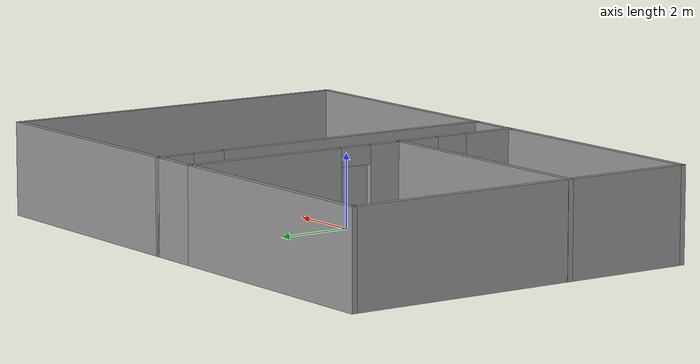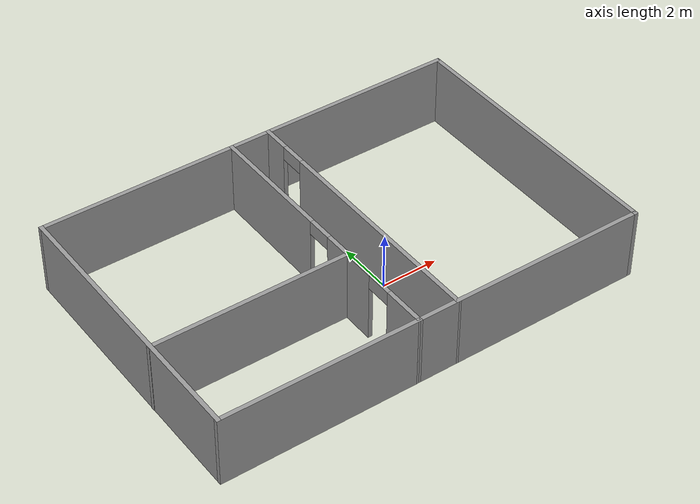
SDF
<?xml version='1.0'?>
<sdf version='1.6'>
  <model name='large_rooms'>
    <pose frame=''>-1.00982 0.957129 0 0 -0 0</pose>
    <link name='Wall_15'>
      <pose frame=''>-0.693998 -0.00105 0 0 0 -1.57083</pose>
      <visual name='Wall_15_Visual_0'>
        <pose frame=''>-2.72597 0 1.25 0 -0 0</pose>
        <geometry>
          <box>
            <size>4.54806 0.15 2.5</size>
          </box>
        </geometry>
        <material>
          <script>
            <uri>file://media/materials/scripts/gazebo.material</uri>
            <name>Gazebo/Grey</name>
          </script>
          <ambient>1 1 1 1</ambient>
        </material>
      </visual>
      <collision name='Wall_15_Collision_0'>
        <geometry>
          <box>
            <size>4.54806 0.15 2.5</size>
          </box>
        </geometry>
        <pose frame=''>-2.72597 0 1.25 0 -0 0</pose>
      </collision>
      <visual name='Wall_15_Visual_1'>
        <pose frame=''>1.51228 0 1.25 0 -0 0</pose>
        <geometry>
          <box>
            <size>2.12844 0.15 2.5</size>
          </box>
        </geometry>
        <material>
          <script>
            <uri>file://media/materials/scripts/gazebo.material</uri>
            <name>Gazebo/Grey</name>
          </script>
          <ambient>1 1 1 1</ambient>
        </material>
      </visual>
      <collision name='Wall_15_Collision_1'>
        <geometry>
          <box>
            <size>2.12844 0.15 2.5</size>
          </box>
        </geometry>
        <pose frame=''>1.51228 0 1.25 0 -0 0</pose>
      </collision>
      <visual name='Wall_15_Visual_2'>
        <pose frame=''>4.23825 0 1.25 0 -0 0</pose>
        <geometry>
          <box>
            <size>1.5235 0.15 2.5</size>
          </box>
        </geometry>
        <material>
          <script>
            <uri>file://media/materials/scripts/gazebo.material</uri>
            <name>Gazebo/Grey</name>
          </script>
          <ambient>1 1 1 1</ambient>
        </material>
      </visual>
      <collision name='Wall_15_Collision_2'>
        <geometry>
          <box>
            <size>1.5235 0.15 2.5</size>
          </box>
        </geometry>
        <pose frame=''>4.23825 0 1.25 0 -0 0</pose>
      </collision>
      <visual name='Wall_15_Visual_3'>
        <pose frame=''>-0.001938 0 2.25 0 -0 0</pose>
        <geometry>
          <box>
            <size>0.9 0.15 0.5</size>
          </box>
        </geometry>
        <material>
          <script>
            <uri>file://media/materials/scripts/gazebo.material</uri>
            <name>Gazebo/Grey</name>
          </script>
          <ambient>1 1 1 1</ambient>
        </material>
      </visual>
      <collision name='Wall_15_Collision_3'>
        <geometry>
          <box>
            <size>0.9 0.15 0.5</size>
          </box>
        </geometry>
        <pose frame=''>-0.001938 0 2.25 0 -0 0</pose>
      </collision>
      <visual name='Wall_15_Visual_4'>
        <pose frame=''>3.0265 0 2.25 0 -0 0</pose>
        <geometry>
          <box>
            <size>0.9 0.15 0.5</size>
          </box>
        </geometry>
        <material>
          <script>
            <uri>file://media/materials/scripts/gazebo.material</uri>
            <name>Gazebo/Grey</name>
          </script>
          <ambient>1 1 1 1</ambient>
        </material>
      </visual>
      <collision name='Wall_15_Collision_4'>
        <geometry>
          <box>
            <size>0.9 0.15 0.5</size>
          </box>
        </geometry>
        <pose frame=''>3.0265 0 2.25 0 -0 0</pose>
      </collision>
    </link>
    <link name='Wall_17'>
      <pose frame=''>0.703787 0.001137 0 0 -0 1.5708</pose>
      <visual name='Wall_17_Visual_0'>
        <pose frame=''>-0.967925 0 1.25 0 -0 0</pose>
        <geometry>
          <box>
            <size>8.06415 0.15 2.5</size>
          </box>
        </geometry>
        <material>
          <script>
            <uri>file://media/materials/scripts/gazebo.material</uri>
            <name>Gazebo/Grey</name>
          </script>
          <ambient>1 1 1 1</ambient>
        </material>
      </visual>
      <collision name='Wall_17_Collision_0'>
        <geometry>
          <box>
            <size>8.06415 0.15 2.5</size>
          </box>
        </geometry>
        <pose frame=''>-0.967925 0 1.25 0 -0 0</pose>
      </collision>
      <visual name='Wall_17_Visual_1'>
        <pose frame=''>4.48208 0 1.25 0 -0 0</pose>
        <geometry>
          <box>
            <size>1.03585 0.15 2.5</size>
          </box>
        </geometry>
        <material>
          <script>
            <uri>file://media/materials/scripts/gazebo.material</uri>
            <name>Gazebo/Grey</name>
          </script>
          <ambient>1 1 1 1</ambient>
        </material>
      </visual>
      <collision name='Wall_17_Collision_1'>
        <geometry>
          <box>
            <size>1.03585 0.15 2.5</size>
          </box>
        </geometry>
        <pose frame=''>4.48208 0 1.25 0 -0 0</pose>
      </collision>
      <visual name='Wall_17_Visual_2'>
        <pose frame=''>3.51415 0 2.25 0 -0 0</pose>
        <geometry>
          <box>
            <size>0.9 0.15 0.5</size>
          </box>
        </geometry>
        <material>
          <script>
            <uri>file://media/materials/scripts/gazebo.material</uri>
            <name>Gazebo/Grey</name>
          </script>
          <ambient>1 1 1 1</ambient>
        </material>
      </visual>
      <collision name='Wall_17_Collision_2'>
        <geometry>
          <box>
            <size>0.9 0.15 0.5</size>
          </box>
        </geometry>
        <pose frame=''>3.51415 0 2.25 0 -0 0</pose>
      </collision>
    </link>
    <link name='Wall_19'>
      <collision name='Wall_19_Collision'>
        <geometry>
          <box>
            <size>1.5476 0.15 2.5</size>
          </box>
        </geometry>
        <pose frame=''>0 0 1.25 0 -0 0</pose>
      </collision>
      <visual name='Wall_19_Visual'>
        <pose frame=''>0 0 1.25 0 -0 0</pose>
        <geometry>
          <box>
            <size>1.5476 0.15 2.5</size>
          </box>
        </geometry>
        <material>
          <script>
            <uri>file://media/materials/scripts/gazebo.material</uri>
            <name>Gazebo/Grey</name>
          </script>
          <ambient>1 1 1 1</ambient>
        </material>
      </visual>
      <pose frame=''>0.004804 -4.925 0 0 -0 0.001621</pose>
    </link>
    <link name='Wall_21'>
      <collision name='Wall_21_Collision'>
        <geometry>
          <box>
            <size>1.5476 0.15 2.5</size>
          </box>
        </geometry>
        <pose frame=''>0 0 1.25 0 -0 0</pose>
      </collision>
      <visual name='Wall_21_Visual'>
        <pose frame=''>0 0 1.25 0 -0 0</pose>
        <geometry>
          <box>
            <size>1.5476 0.15 2.5</size>
          </box>
        </geometry>
        <material>
          <script>
            <uri>file://media/materials/scripts/gazebo.material</uri>
            <name>Gazebo/Grey</name>
          </script>
          <ambient>1 1 1 1</ambient>
        </material>
      </visual>
      <pose frame=''>0.004985 4.92508 0 0 -0 0.001508</pose>
    </link>
    <link name='Wall_23'>
      <collision name='Wall_23_Collision'>
        <geometry>
          <box>
            <size>7 0.15 2.5</size>
          </box>
        </geometry>
        <pose frame=''>0 0 1.25 0 -0 0</pose>
      </collision>
      <visual name='Wall_23_Visual'>
        <pose frame=''>0 0 1.25 0 -0 0</pose>
        <geometry>
          <box>
            <size>7 0.15 2.5</size>
          </box>
        </geometry>
        <material>
          <script>
            <uri>file://media/materials/scripts/gazebo.material</uri>
            <name>Gazebo/Grey</name>
          </script>
          <ambient>1 1 1 1</ambient>
        </material>
      </visual>
      <pose frame=''>4.12879 4.92614 0 0 -0 0</pose>
    </link>
    <link name='Wall_26'>
      <collision name='Wall_26_Collision'>
        <geometry>
          <box>
            <size>7 0.15 2.5</size>
          </box>
        </geometry>
        <pose frame=''>0 0 1.25 0 -0 0</pose>
      </collision>
      <visual name='Wall_26_Visual'>
        <pose frame=''>0 0 1.25 0 -0 0</pose>
        <geometry>
          <box>
            <size>7 0.15 2.5</size>
          </box>
        </geometry>
        <material>
          <script>
            <uri>file://media/materials/scripts/gazebo.material</uri>
            <name>Gazebo/Grey</name>
          </script>
          <ambient>1 1 1 1</ambient>
        </material>
      </visual>
      <pose frame=''>4.12879 -4.92386 0 0 -0 0</pose>
    </link>
    <link name='Wall_28'>
      <collision name='Wall_28_Collision'>
        <geometry>
          <box>
            <size>10 0.15 2.5</size>
          </box>
        </geometry>
        <pose frame=''>0 0 1.25 0 -0 0</pose>
      </collision>
      <visual name='Wall_28_Visual'>
        <pose frame=''>0 0 1.25 0 -0 0</pose>
        <geometry>
          <box>
            <size>10 0.15 2.5</size>
          </box>
        </geometry>
        <material>
          <script>
            <uri>file://media/materials/scripts/gazebo.material</uri>
            <name>Gazebo/Grey</name>
          </script>
          <ambient>1 1 1 1</ambient>
        </material>
      </visual>
      <pose frame=''>7.55379 0.001137 0 0 0 -1.5708</pose>
    </link>
    <link name='Wall_30'>
      <collision name='Wall_30_Collision'>
        <geometry>
          <box>
            <size>7 0.15 2.5</size>
          </box>
        </geometry>
        <pose frame=''>0 0 1.25 0 -0 0</pose>
      </collision>
      <visual name='Wall_30_Visual'>
        <pose frame=''>0 0 1.25 0 -0 0</pose>
        <geometry>
          <box>
            <size>7 0.15 2.5</size>
          </box>
        </geometry>
        <material>
          <script>
            <uri>file://media/materials/scripts/gazebo.material</uri>
            <name>Gazebo/Grey</name>
          </script>
          <ambient>1 1 1 1</ambient>
        </material>
      </visual>
      <pose frame=''>-4.11918 -4.92613 0 0 -0 3.14159</pose>
    </link>
    <link name='Wall_32'>
      <collision name='Wall_32_Collision'>
        <geometry>
          <box>
            <size>7 0.15 2.5</size>
          </box>
        </geometry>
        <pose frame=''>0 0 1.25 0 -0 0</pose>
      </collision>
      <visual name='Wall_32_Visual'>
        <pose frame=''>0 0 1.25 0 -0 0</pose>
        <geometry>
          <box>
            <size>7 0.15 2.5</size>
          </box>
        </geometry>
        <material>
          <script>
            <uri>file://media/materials/scripts/gazebo.material</uri>
            <name>Gazebo/Grey</name>
          </script>
          <ambient>1 1 1 1</ambient>
        </material>
      </visual>
      <pose frame=''>-4.11882 4.92403 0 0 -0 3.14159</pose>
    </link>
    <link name='Wall_33'>
      <collision name='Wall_33_Collision'>
        <geometry>
          <box>
            <size>10 0.15 2.5</size>
          </box>
        </geometry>
        <pose frame=''>0 0 1.25 0 -0 0</pose>
      </collision>
      <visual name='Wall_33_Visual'>
        <pose frame=''>0 0 1.25 0 -0 0</pose>
        <geometry>
          <box>
            <size>10 0.15 2.5</size>
          </box>
        </geometry>
        <material>
          <script>
            <uri>file://media/materials/scripts/gazebo.material</uri>
            <name>Gazebo/Grey</name>
          </script>
          <ambient>1 1 1 1</ambient>
        </material>
      </visual>
      <pose frame=''>-7.54382 -0.00097 0 0 0 -1.5708</pose>
    </link>
    <link name='Wall_35'>
      <collision name='Wall_35_Collision'>
        <geometry>
          <box>
            <size>7 0.15 2.5</size>
          </box>
        </geometry>
        <pose frame=''>0 0 1.25 0 -0 0</pose>
      </collision>
      <visual name='Wall_35_Visual'>
        <pose frame=''>0 0 1.25 0 -0 0</pose>
        <geometry>
          <box>
            <size>7 0.15 2.5</size>
          </box>
        </geometry>
        <material>
          <script>
            <uri>file://media/materials/scripts/gazebo.material</uri>
            <name>Gazebo/Grey</name>
          </script>
          <ambient>1 1 1 1</ambient>
        </material>
      </visual>
      <pose frame=''>-4.12879 -1.40389 0 0 -0 0</pose>
    </link>
    <static>1</static>
  </model>
</sdf>
